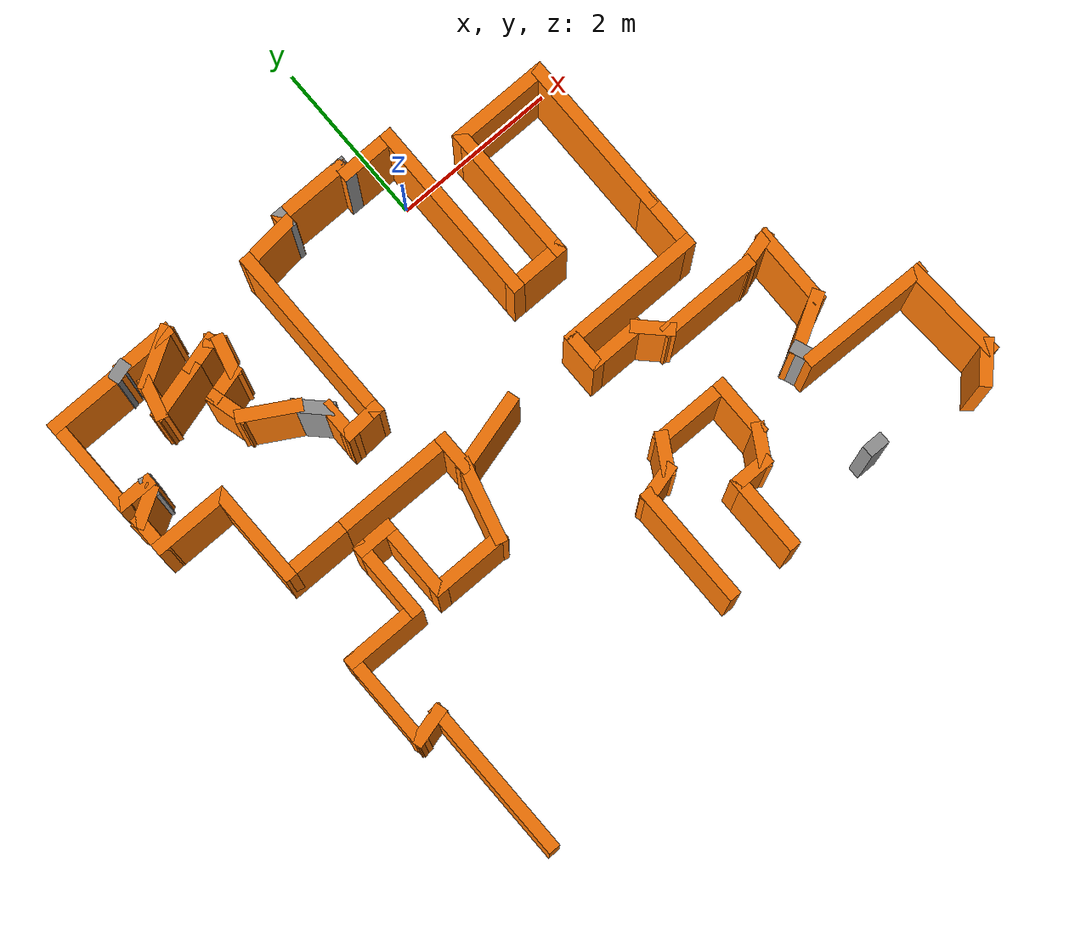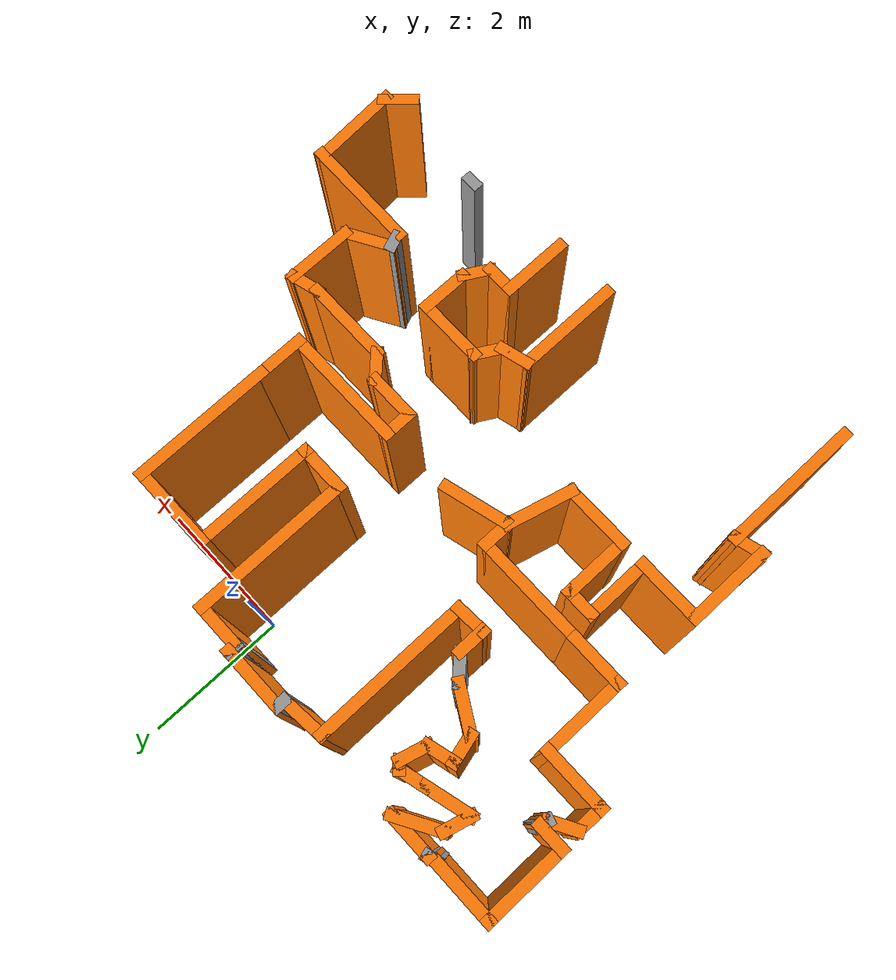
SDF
<sdf version="1.6">
 <model name="map_4">
  <pose>-0.448381 -5.69762 0 0 -0 0</pose>
  <link name="Wall_0">
   <collision name="Wall_0_Collision">
    <geometry><box><size>2.25 0.15 2.5</size></box></geometry>
    <pose>0 0 1.25 0 -0 0</pose>
   </collision>
   <visual name="Wall_0_Visual">
    <pose>0 0 1.25 0 -0 0</pose>
    <geometry><box><size>2.25 0.15 2.5</size></box></geometry>
    <material>
     <script><uri>file://media/materials/scripts/gazebo.material</uri><name>Gazebo/Grey</name></script>
     <ambient>0.996078 0.47451 0.0196078 1</ambient>
    </material>
    <meta><layer>0</layer></meta>
   </visual>
   <pose>-1.38482 5.02012 0 0 -0 -1.5708</pose>
  </link>
  <link name="Wall_1">
   <collision name="Wall_1_Collision">
    <geometry><box><size>0.523847 0.15 2.5</size></box></geometry>
    <pose>0 0 1.25 0 -0 0</pose>
   </collision>
   <visual name="Wall_1_Visual">
    <pose>0 0 1.25 0 -0 0</pose>
    <geometry><box><size>0.523847 0.15 2.5</size></box></geometry>
    <material>
     <script><uri>file://media/materials/scripts/gazebo.material</uri><name>Gazebo/Grey</name></script>
     <ambient>0.996078 0.47451 0.0196078 1</ambient>
    </material>
    <meta><layer>0</layer></meta>
   </visual>
   <pose>-1.57139 3.95855 0 0 -0 -3.07968</pose>
  </link>
  <link name="Wall_118">
   <collision name="Wall_118_Collision">
    <geometry><box><size>1.5 0.15 2.5</size></box></geometry>
    <pose>0 0 1.25 0 -0 0</pose>
   </collision>
   <visual name="Wall_118_Visual">
    <pose>0 0 1.25 0 -0 0</pose>
    <geometry><box><size>1.5 0.15 2.5</size></box></geometry>
    <material>
     <script><uri>file://media/materials/scripts/gazebo.material</uri><name>Gazebo/Grey</name></script>
     <ambient>0.996078 0.47451 0.0196078 1</ambient>
    </material>
    <meta><layer>0</layer></meta>
   </visual>
   <pose>0.254748 0.668578 0 0 -0 1.5708</pose>
  </link>
  <link name="Wall_119">
   <collision name="Wall_119_Collision">
    <geometry><box><size>0.5 0.15 2.5</size></box></geometry>
    <pose>0 0 1.25 0 -0 0</pose>
   </collision>
   <visual name="Wall_119_Visual">
    <pose>0 0 1.25 0 -0 0</pose>
    <geometry><box><size>0.5 0.15 2.5</size></box></geometry>
    <material>
     <script><uri>file://media/materials/scripts/gazebo.material</uri><name>Gazebo/Grey</name></script>
     <ambient>0.996078 0.47451 0.0196078 1</ambient>
    </material>
    <meta><layer>0</layer></meta>
   </visual>
   <pose>0.423785 1.38887 0 0 -0 0.261799</pose>
  </link>
  <link name="Wall_12">
   <collision name="Wall_12_Collision">
    <geometry><box><size>0.75 0.15 2.5</size></box></geometry>
    <pose>0 0 1.25 0 -0 0</pose>
   </collision>
   <visual name="Wall_12_Visual">
    <pose>0 0 1.25 0 -0 0</pose>
    <geometry><box><size>0.75 0.15 2.5</size></box></geometry>
    <material>
     <script><uri>file://media/materials/scripts/gazebo.material</uri><name>Gazebo/Grey</name></script>
     <ambient>0.996078 0.47451 0.0196078 1</ambient>
    </material>
    <meta><layer>0</layer></meta>
   </visual>
   <pose>-2.88554 5.51369 0 0 -0 -2.87979</pose>
  </link>
  <link name="Wall_120">
   <collision name="Wall_120_Collision">
    <geometry><box><size>0.5 0.15 2.5</size></box></geometry>
    <pose>0 0 1.25 0 -0 0</pose>
   </collision>
   <visual name="Wall_120_Visual">
    <pose>0 0 1.25 0 -0 0</pose>
    <geometry><box><size>0.5 0.15 2.5</size></box></geometry>
    <material>
     <script><uri>file://media/materials/scripts/gazebo.material</uri><name>Gazebo/Grey</name></script>
     <ambient>0.996078 0.47451 0.0196078 1</ambient>
    </material>
    <meta><layer>0</layer></meta>
   </visual>
   <pose>0.680322 1.58572 0 0 -0 1.0472</pose>
  </link>
  <link name="Wall_121">
   <collision name="Wall_121_Collision">
    <geometry><box><size>1 0.15 2.5</size></box></geometry>
    <pose>0 0 1.25 0 -0 0</pose>
   </collision>
   <visual name="Wall_121_Visual">
    <pose>0 0 1.25 0 -0 0</pose>
    <geometry><box><size>1 0.15 2.5</size></box></geometry>
    <material>
     <script><uri>file://media/materials/scripts/gazebo.material</uri><name>Gazebo/Grey</name></script>
     <ambient>0.996078 0.47451 0.0196078 1</ambient>
    </material>
    <meta><layer>0</layer></meta>
   </visual>
   <pose>1.19282 1.73727 0 0 -0 0</pose>
  </link>
  <link name="Wall_122">
   <collision name="Wall_122_Collision">
    <geometry><box><size>0.75 0.15 2.5</size></box></geometry>
    <pose>0 0 1.25 0 -0 0</pose>
   </collision>
   <visual name="Wall_122_Visual">
    <pose>0 0 1.25 0 -0 0</pose>
    <geometry><box><size>0.75 0.15 2.5</size></box></geometry>
    <material>
     <script><uri>file://media/materials/scripts/gazebo.material</uri><name>Gazebo/Grey</name></script>
     <ambient>0.996078 0.47451 0.0196078 1</ambient>
    </material>
    <meta><layer>0</layer></meta>
   </visual>
   <pose>1.61782 1.43727 0 0 -0 -1.5708</pose>
  </link>
  <link name="Wall_123">
   <collision name="Wall_123_Collision">
    <geometry><box><size>0.5 0.15 2.5</size></box></geometry>
    <pose>0 0 1.25 0 -0 0</pose>
   </collision>
   <visual name="Wall_123_Visual">
    <pose>0 0 1.25 0 -0 0</pose>
    <geometry><box><size>0.5 0.15 2.5</size></box></geometry>
    <material>
     <script><uri>file://media/materials/scripts/gazebo.material</uri><name>Gazebo/Grey</name></script>
     <ambient>0.996078 0.47451 0.0196078 1</ambient>
    </material>
    <meta><layer>0</layer></meta>
   </visual>
   <pose>1.53032 0.985719 0 0 -0 -2.0944</pose>
  </link>
  <link name="Wall_124">
   <collision name="Wall_124_Collision">
    <geometry><box><size>0.5 0.15 2.5</size></box></geometry>
    <pose>0 0 1.25 0 -0 0</pose>
   </collision>
   <visual name="Wall_124_Visual">
    <pose>0 0 1.25 0 -0 0</pose>
    <geometry><box><size>0.5 0.15 2.5</size></box></geometry>
    <material>
     <script><uri>file://media/materials/scripts/gazebo.material</uri><name>Gazebo/Grey</name></script>
     <ambient>0.996078 0.47451 0.0196078 1</ambient>
    </material>
    <meta><layer>0</layer></meta>
   </visual>
   <pose>1.26782 0.834164 0 0 -0 3.14159</pose>
  </link>
  <link name="Wall_125">
   <collision name="Wall_125_Collision">
    <geometry><box><size>1 0.15 2.5</size></box></geometry>
    <pose>0 0 1.25 0 -0 0</pose>
   </collision>
   <visual name="Wall_125_Visual">
    <pose>0 0 1.25 0 -0 0</pose>
    <geometry><box><size>1 0.15 2.5</size></box></geometry>
    <material>
     <script><uri>file://media/materials/scripts/gazebo.material</uri><name>Gazebo/Grey</name></script>
     <ambient>0.996078 0.47451 0.0196078 1</ambient>
    </material>
    <meta><layer>0</layer></meta>
   </visual>
   <pose>1.09282 0.409164 0 0 -0 -1.5708</pose>
  </link>
  <link name="Wall_13">
   <collision name="Wall_13_Collision">
    <geometry><box><size>0.5 0.15 2.5</size></box></geometry>
    <pose>0 0 1.25 0 -0 0</pose>
   </collision>
   <visual name="Wall_13_Visual">
    <pose>0 0 1.25 0 -0 0</pose>
    <geometry><box><size>0.5 0.15 2.5</size></box></geometry>
    <material>
     <script><uri>file://media/materials/scripts/gazebo.material</uri><name>Gazebo/Grey</name></script>
     <ambient>0.996078 0.47451 0.0196078 1</ambient>
    </material>
    <meta><layer>0</layer></meta>
   </visual>
   <pose>-3.13003 5.60508 0 0 -0 1.309</pose>
  </link>
  <link name="Wall_134">
   <collision name="Wall_134_Collision">
    <geometry><box><size>0.25 0.15 2.5</size></box></geometry>
    <pose>0 0 1.25 0 -0 0</pose>
   </collision>
   <visual name="Wall_134_Visual">
    <pose>0 0 1.25 0 -0 0</pose>
    <geometry><box><size>0.25 0.15 2.5</size></box></geometry>
    <material>
     <script><uri>file://media/materials/scripts/gazebo.material</uri><name>Gazebo/Grey</name></script>
     <ambient>1 1 1 1</ambient>
    </material>
    <meta><layer>0</layer></meta>
   </visual>
   <pose>2.46924 0.189335 0 0 -0 0</pose>
  </link>
  <link name="Wall_14">
   <collision name="Wall_14_Collision">
    <geometry><box><size>0.75 0.15 2.5</size></box></geometry>
    <pose>0 0 1.25 0 -0 0</pose>
   </collision>
   <visual name="Wall_14_Visual">
    <pose>0 0 1.25 0 -0 0</pose>
    <geometry><box><size>0.75 0.15 2.5</size></box></geometry>
    <material>
     <script><uri>file://media/materials/scripts/gazebo.material</uri><name>Gazebo/Grey</name></script>
     <ambient>0.996078 0.47451 0.0196078 1</ambient>
    </material>
    <meta><layer>0</layer></meta>
   </visual>
   <pose>-2.82493 5.92412 0 0 -0 0.523599</pose>
  </link>
  <link name="Wall_140">
   <collision name="Wall_140_Collision">
    <geometry><box><size>0.53772 0.15 2.5</size></box></geometry>
    <pose>0 0 1.25 0 -0 0</pose>
   </collision>
   <visual name="Wall_140_Visual">
    <pose>0 0 1.25 0 -0 0</pose>
    <geometry><box><size>0.53772 0.15 2.5</size></box></geometry>
    <material>
     <script><uri>file://media/materials/scripts/gazebo.material</uri><name>Gazebo/Grey</name></script>
     <ambient>0.996078 0.47451 0.0196078 1</ambient>
    </material>
    <meta><layer>0</layer></meta>
   </visual>
   <pose>3.95601 0.095884 0 0 -0 0.827595</pose>
  </link>
  <link name="Wall_141">
   <collision name="Wall_141_Collision">
    <geometry><box><size>1.27527 0.15 2.5</size></box></geometry>
    <pose>0 0 1.25 0 -0 0</pose>
   </collision>
   <visual name="Wall_141_Visual">
    <pose>0 0 1.25 0 -0 0</pose>
    <geometry><box><size>1.27527 0.15 2.5</size></box></geometry>
    <material>
     <script><uri>file://media/materials/scripts/gazebo.material</uri><name>Gazebo/Grey</name></script>
     <ambient>0.996078 0.47451 0.0196078 1</ambient>
    </material>
    <meta><layer>0</layer></meta>
   </visual>
   <pose>4.05249 0.753929 0 0 -0 1.6325</pose>
  </link>
  <link name="Wall_142">
   <collision name="Wall_142_Collision">
    <geometry><box><size>1.63453 0.15 2.5</size></box></geometry>
    <pose>0 0 1.25 0 -0 0</pose>
   </collision>
   <visual name="Wall_142_Visual">
    <pose>0 0 1.25 0 -0 0</pose>
    <geometry><box><size>1.63453 0.15 2.5</size></box></geometry>
    <material>
     <script><uri>file://media/materials/scripts/gazebo.material</uri><name>Gazebo/Grey</name></script>
     <ambient>0.996078 0.47451 0.0196078 1</ambient>
    </material>
    <meta><layer>0</layer></meta>
   </visual>
   <pose>3.29875 1.32706 0 0 -0 3.12601</pose>
  </link>
  <link name="Wall_143">
   <collision name="Wall_143_Collision">
    <geometry><box><size>0.29196 0.15 2.5</size></box></geometry>
    <pose>0 0 1.25 0 -0 0</pose>
   </collision>
   <visual name="Wall_143_Visual">
    <pose>0 0 1.25 0 -0 0</pose>
    <geometry><box><size>0.29196 0.15 2.5</size></box></geometry>
    <material>
     <script><uri>file://media/materials/scripts/gazebo.material</uri><name>Gazebo/Grey</name></script>
     <ambient>1 1 1 1</ambient>
    </material>
    <meta><layer>0</layer></meta>
   </visual>
   <pose>2.53157 1.45132 0 0 -0 1.93073</pose>
  </link>
  <link name="Wall_144">
   <collision name="Wall_144_Collision">
    <geometry><box><size>0.75 0.15 2.5</size></box></geometry>
    <pose>0 0 1.25 0 -0 0</pose>
   </collision>
   <visual name="Wall_144_Visual">
    <pose>0 0 1.25 0 -0 0</pose>
    <geometry><box><size>0.75 0.15 2.5</size></box></geometry>
    <material>
     <script><uri>file://media/materials/scripts/gazebo.material</uri><name>Gazebo/Grey</name></script>
     <ambient>0.996078 0.47451 0.0196078 1</ambient>
    </material>
    <meta><layer>0</layer></meta>
   </visual>
   <pose>2.76638 1.66775 0 0 -0 0.523599</pose>
  </link>
  <link name="Wall_146">
   <collision name="Wall_146_Collision">
    <geometry><box><size>1 0.15 2.5</size></box></geometry>
    <pose>0 0 1.25 0 -0 0</pose>
   </collision>
   <visual name="Wall_146_Visual">
    <pose>0 0 1.25 0 -0 0</pose>
    <geometry><box><size>1 0.15 2.5</size></box></geometry>
    <material>
     <script><uri>file://media/materials/scripts/gazebo.material</uri><name>Gazebo/Grey</name></script>
     <ambient>0.996078 0.47451 0.0196078 1</ambient>
    </material>
    <meta><layer>0</layer></meta>
   </visual>
   <pose>3.02619 2.24275 0 0 -0 1.5708</pose>
  </link>
  <link name="Wall_147">
   <collision name="Wall_147_Collision">
    <geometry><box><size>0.5 0.15 2.5</size></box></geometry>
    <pose>0 0 1.25 0 -0 0</pose>
   </collision>
   <visual name="Wall_147_Visual">
    <pose>0 0 1.25 0 -0 0</pose>
    <geometry><box><size>0.5 0.15 2.5</size></box></geometry>
    <material>
     <script><uri>file://media/materials/scripts/gazebo.material</uri><name>Gazebo/Grey</name></script>
     <ambient>0.996078 0.47451 0.0196078 1</ambient>
    </material>
    <meta><layer>0</layer></meta>
   </visual>
   <pose>2.85715 2.62246 0 0 -0 -2.87979</pose>
  </link>
  <link name="Wall_148">
   <collision name="Wall_148_Collision">
    <geometry><box><size>1.25 0.15 2.5</size></box></geometry>
    <pose>0 0 1.25 0 -0 0</pose>
   </collision>
   <visual name="Wall_148_Visual">
    <pose>0 0 1.25 0 -0 0</pose>
    <geometry><box><size>1.25 0.15 2.5</size></box></geometry>
    <material>
     <script><uri>file://media/materials/scripts/gazebo.material</uri><name>Gazebo/Grey</name></script>
     <ambient>0.996078 0.47451 0.0196078 1</ambient>
    </material>
    <meta><layer>0</layer></meta>
   </visual>
   <pose>2.13811 2.57716 0 0 -0 3.14159</pose>
  </link>
  <link name="Wall_149">
   <collision name="Wall_149_Collision">
    <geometry><box><size>0.5 0.15 2.5</size></box></geometry>
    <pose>0 0 1.25 0 -0 0</pose>
   </collision>
   <visual name="Wall_149_Visual">
    <pose>0 0 1.25 0 -0 0</pose>
    <geometry><box><size>0.5 0.15 2.5</size></box></geometry>
    <material>
     <script><uri>file://media/materials/scripts/gazebo.material</uri><name>Gazebo/Grey</name></script>
     <ambient>0.996078 0.47451 0.0196078 1</ambient>
    </material>
    <meta><layer>0</layer></meta>
   </visual>
   <pose>1.46437 2.70091 0 0 -0 2.35619</pose>
  </link>
  <link name="Wall_15">
   <collision name="Wall_15_Collision">
    <geometry><box><size>0.75 0.15 2.5</size></box></geometry>
    <pose>0 0 1.25 0 -0 0</pose>
   </collision>
   <visual name="Wall_15_Visual">
    <pose>0 0 1.25 0 -0 0</pose>
    <geometry><box><size>0.75 0.15 2.5</size></box></geometry>
    <material>
     <script><uri>file://media/materials/scripts/gazebo.material</uri><name>Gazebo/Grey</name></script>
     <ambient>0.996078 0.47451 0.0196078 1</ambient>
    </material>
    <meta><layer>0</layer></meta>
   </visual>
   <pose>-2.86512 6.07412 0 0 -0 3.14159</pose>
  </link>
  <link name="Wall_150">
   <collision name="Wall_150_Collision">
    <geometry><box><size>0.75 0.15 2.5</size></box></geometry>
    <pose>0 0 1.25 0 -0 0</pose>
   </collision>
   <visual name="Wall_150_Visual">
    <pose>0 0 1.25 0 -0 0</pose>
    <geometry><box><size>0.75 0.15 2.5</size></box></geometry>
    <material>
     <script><uri>file://media/materials/scripts/gazebo.material</uri><name>Gazebo/Grey</name></script>
     <ambient>0.996078 0.47451 0.0196078 1</ambient>
    </material>
    <meta><layer>0</layer></meta>
   </visual>
   <pose>1.04063 2.82465 0 0 -0 3.14159</pose>
  </link>
  <link name="Wall_151">
   <collision name="Wall_151_Collision">
    <geometry><box><size>0.5 0.15 2.5</size></box></geometry>
    <pose>0 0 1.25 0 -0 0</pose>
   </collision>
   <visual name="Wall_151_Visual">
    <pose>0 0 1.25 0 -0 0</pose>
    <geometry><box><size>0.5 0.15 2.5</size></box></geometry>
    <material>
     <script><uri>file://media/materials/scripts/gazebo.material</uri><name>Gazebo/Grey</name></script>
     <ambient>0.996078 0.47451 0.0196078 1</ambient>
    </material>
    <meta><layer>0</layer></meta>
   </visual>
   <pose>0.740628 2.99965 0 0 -0 1.5708</pose>
  </link>
  <link name="Wall_152">
   <collision name="Wall_152_Collision">
    <geometry><box><size>1.75 0.15 2.5</size></box></geometry>
    <pose>0 0 1.25 0 -0 0</pose>
   </collision>
   <visual name="Wall_152_Visual">
    <pose>0 0 1.25 0 -0 0</pose>
    <geometry><box><size>1.75 0.15 2.5</size></box></geometry>
    <material>
     <script><uri>file://media/materials/scripts/gazebo.material</uri><name>Gazebo/Grey</name></script>
     <ambient>0.996078 0.47451 0.0196078 1</ambient>
    </material>
    <meta><layer>0</layer></meta>
   </visual>
   <pose>1.54063 3.17465 0 0 -0 0</pose>
  </link>
  <link name="Wall_153">
   <collision name="Wall_153_Collision">
    <geometry><box><size>0.75 0.15 2.5</size></box></geometry>
    <pose>0 0 1.25 0 -0 0</pose>
   </collision>
   <visual name="Wall_153_Visual">
    <pose>0 0 1.25 0 -0 0</pose>
    <geometry><box><size>0.75 0.15 2.5</size></box></geometry>
    <material>
     <script><uri>file://media/materials/scripts/gazebo.material</uri><name>Gazebo/Grey</name></script>
     <ambient>0.996078 0.47451 0.0196078 1</ambient>
    </material>
    <meta><layer>0</layer></meta>
   </visual>
   <pose>2.34063 3.47465 0 0 -0 1.5708</pose>
  </link>
  <link name="Wall_154">
   <collision name="Wall_154_Collision">
    <geometry><box><size>2 0.15 2.5</size></box></geometry>
    <pose>0 0 1.25 0 -0 0</pose>
   </collision>
   <visual name="Wall_154_Visual">
    <pose>0 0 1.25 0 -0 0</pose>
    <geometry><box><size>2 0.15 2.5</size></box></geometry>
    <material>
     <script><uri>file://media/materials/scripts/gazebo.material</uri><name>Gazebo/Grey</name></script>
     <ambient>0.996078 0.47451 0.0196078 1</ambient>
    </material>
    <meta><layer>0</layer></meta>
   </visual>
   <pose>2.34063 4.69965 0 0 -0 1.5708</pose>
  </link>
  <link name="Wall_159">
   <collision name="Wall_159_Collision">
    <geometry><box><size>1.25 0.15 2.5</size></box></geometry>
    <pose>0 0 1.25 0 -0 0</pose>
   </collision>
   <visual name="Wall_159_Visual">
    <pose>0 0 1.25 0 -0 0</pose>
    <geometry><box><size>1.25 0.15 2.5</size></box></geometry>
    <material>
     <script><uri>file://media/materials/scripts/gazebo.material</uri><name>Gazebo/Grey</name></script>
     <ambient>0.996078 0.47451 0.0196078 1</ambient>
    </material>
    <meta><layer>0</layer></meta>
   </visual>
   <pose>1.79063 5.62465 0 0 -0 3.14159</pose>
  </link>
  <link name="Wall_16">
   <collision name="Wall_16_Collision">
    <geometry><box><size>0.25 0.15 2.5</size></box></geometry>
    <pose>0 0 1.25 0 -0 0</pose>
   </collision>
   <visual name="Wall_16_Visual">
    <pose>0 0 1.25 0 -0 0</pose>
    <geometry><box><size>0.25 0.15 2.5</size></box></geometry>
    <material>
     <script><uri>file://media/materials/scripts/gazebo.material</uri><name>Gazebo/Grey</name></script>
     <ambient>1 1 1 1</ambient>
    </material>
    <meta><layer>0</layer></meta>
   </visual>
   <pose>-3.21341 6.06118 0 0 -0 -2.87979</pose>
  </link>
  <link name="Wall_160">
   <collision name="Wall_160_Collision">
    <geometry><box><size>1.75 0.15 2.5</size></box></geometry>
    <pose>0 0 1.25 0 -0 0</pose>
   </collision>
   <visual name="Wall_160_Visual">
    <pose>0 0 1.25 0 -0 0</pose>
    <geometry><box><size>1.75 0.15 2.5</size></box></geometry>
    <material>
     <script><uri>file://media/materials/scripts/gazebo.material</uri><name>Gazebo/Grey</name></script>
     <ambient>0.996078 0.47451 0.0196078 1</ambient>
    </material>
    <meta><layer>0</layer></meta>
   </visual>
   <pose>1.24063 4.82465 0 0 -0 -1.5708</pose>
  </link>
  <link name="Wall_161">
   <collision name="Wall_161_Collision">
    <geometry><box><size>0.75 0.15 2.5</size></box></geometry>
    <pose>0 0 1.25 0 -0 0</pose>
   </collision>
   <visual name="Wall_161_Visual">
    <pose>0 0 1.25 0 -0 0</pose>
    <geometry><box><size>0.75 0.15 2.5</size></box></geometry>
    <material>
     <script><uri>file://media/materials/scripts/gazebo.material</uri><name>Gazebo/Grey</name></script>
     <ambient>0.996078 0.47451 0.0196078 1</ambient>
    </material>
    <meta><layer>0</layer></meta>
   </visual>
   <pose>0.940628 4.02465 0 0 -0 3.14159</pose>
  </link>
  <link name="Wall_162">
   <collision name="Wall_162_Collision">
    <geometry><box><size>2.25 0.15 2.5</size></box></geometry>
    <pose>0 0 1.25 0 -0 0</pose>
   </collision>
   <visual name="Wall_162_Visual">
    <pose>0 0 1.25 0 -0 0</pose>
    <geometry><box><size>2.25 0.15 2.5</size></box></geometry>
    <material>
     <script><uri>file://media/materials/scripts/gazebo.material</uri><name>Gazebo/Grey</name></script>
     <ambient>0.996078 0.47451 0.0196078 1</ambient>
    </material>
    <meta><layer>0</layer></meta>
   </visual>
   <pose>0.640628 5.07465 0 0 -0 1.5708</pose>
  </link>
  <link name="Wall_163">
   <collision name="Wall_163_Collision">
    <geometry><box><size>0.75 0.15 2.5</size></box></geometry>
    <pose>0 0 1.25 0 -0 0</pose>
   </collision>
   <visual name="Wall_163_Visual">
    <pose>0 0 1.25 0 -0 0</pose>
    <geometry><box><size>0.75 0.15 2.5</size></box></geometry>
    <material>
     <script><uri>file://media/materials/scripts/gazebo.material</uri><name>Gazebo/Grey</name></script>
     <ambient>0.996078 0.47451 0.0196078 1</ambient>
    </material>
    <meta><layer>0</layer></meta>
   </visual>
   <pose>0.340628 6.12465 0 0 -0 3.14159</pose>
  </link>
  <link name="Wall_164">
   <collision name="Wall_164_Collision">
    <geometry><box><size>0.25 0.15 2.5</size></box></geometry>
    <pose>0 0 1.25 0 -0 0</pose>
   </collision>
   <visual name="Wall_164_Visual">
    <pose>0 0 1.25 0 -0 0</pose>
    <geometry><box><size>0.25 0.15 2.5</size></box></geometry>
    <material>
     <script><uri>file://media/materials/scripts/gazebo.material</uri><name>Gazebo/Grey</name></script>
     <ambient>1 1 1 1</ambient>
    </material>
    <meta><layer>0</layer></meta>
   </visual>
   <pose>0.040628 6.17465 0 0 -0 1.5708</pose>
  </link>
  <link name="Wall_165">
   <collision name="Wall_165_Collision">
    <geometry><box><size>1 0.15 2.5</size></box></geometry>
    <pose>0 0 1.25 0 -0 0</pose>
   </collision>
   <visual name="Wall_165_Visual">
    <pose>0 0 1.25 0 -0 0</pose>
    <geometry><box><size>1 0.15 2.5</size></box></geometry>
    <material>
     <script><uri>file://media/materials/scripts/gazebo.material</uri><name>Gazebo/Grey</name></script>
     <ambient>0.996078 0.47451 0.0196078 1</ambient>
    </material>
    <meta><layer>0</layer></meta>
   </visual>
   <pose>-0.384372 6.22465 0 0 -0 3.14159</pose>
  </link>
  <link name="Wall_166">
   <collision name="Wall_166_Collision">
    <geometry><box><size>0.25 0.15 2.5</size></box></geometry>
    <pose>0 0 1.25 0 -0 0</pose>
   </collision>
   <visual name="Wall_166_Visual">
    <pose>0 0 1.25 0 -0 0</pose>
    <geometry><box><size>0.25 0.15 2.5</size></box></geometry>
    <material>
     <script><uri>file://media/materials/scripts/gazebo.material</uri><name>Gazebo/Grey</name></script>
     <ambient>1 1 1 1</ambient>
    </material>
    <meta><layer>0</layer></meta>
   </visual>
   <pose>-0.809372 6.17465 0 0 -0 -1.5708</pose>
  </link>
  <link name="Wall_167">
   <collision name="Wall_167_Collision">
    <geometry><box><size>0.728027 0.15 2.5</size></box></geometry>
    <pose>0 0 1.25 0 -0 0</pose>
   </collision>
   <visual name="Wall_167_Visual">
    <pose>0 0 1.25 0 -0 0</pose>
    <geometry><box><size>0.728027 0.15 2.5</size></box></geometry>
    <material>
     <script><uri>file://media/materials/scripts/gazebo.material</uri><name>Gazebo/Grey</name></script>
     <ambient>0.996078 0.47451 0.0196078 1</ambient>
    </material>
    <meta><layer>0</layer></meta>
   </visual>
   <pose>-1.0971 6.09739 0 0 -0 -3.04711</pose>
  </link>
  <link name="Wall_17">
   <collision name="Wall_17_Collision">
    <geometry><box><size>1 0.15 2.5</size></box></geometry>
    <pose>0 0 1.25 0 -0 0</pose>
   </collision>
   <visual name="Wall_17_Visual">
    <pose>0 0 1.25 0 -0 0</pose>
    <geometry><box><size>1 0.15 2.5</size></box></geometry>
    <material>
     <script><uri>file://media/materials/scripts/gazebo.material</uri><name>Gazebo/Grey</name></script>
     <ambient>0.996078 0.47451 0.0196078 1</ambient>
    </material>
    <meta><layer>0</layer></meta>
   </visual>
   <pose>-3.68671 6.04824 0 0 -0 3.14159</pose>
  </link>
  <link name="Wall_176">
   <collision name="Wall_176_Collision">
    <geometry><box><size>1 0.15 2.5</size></box></geometry>
    <pose>0 0 1.25 0 -0 0</pose>
   </collision>
   <visual name="Wall_176_Visual">
    <pose>0 0 1.25 0 -0 0</pose>
    <geometry><box><size>1 0.15 2.5</size></box></geometry>
    <material>
     <script><uri>file://media/materials/scripts/gazebo.material</uri><name>Gazebo/Grey</name></script>
     <ambient>0.996078 0.47451 0.0196078 1</ambient>
    </material>
    <meta><layer>0</layer></meta>
   </visual>
   <pose>-0.630183 2.98664 0 0 -0 0.261799</pose>
  </link>
  <link name="Wall_18">
   <collision name="Wall_18_Collision">
    <geometry><box><size>1.25 0.15 2.5</size></box></geometry>
    <pose>0 0 1.25 0 -0 0</pose>
   </collision>
   <visual name="Wall_18_Visual">
    <pose>0 0 1.25 0 -0 0</pose>
    <geometry><box><size>1.25 0.15 2.5</size></box></geometry>
    <material>
     <script><uri>file://media/materials/scripts/gazebo.material</uri><name>Gazebo/Grey</name></script>
     <ambient>0.996078 0.47451 0.0196078 1</ambient>
    </material>
    <meta><layer>0</layer></meta>
   </visual>
   <pose>-4.11171 5.49824 0 0 -0 -1.5708</pose>
  </link>
  <link name="Wall_19">
   <collision name="Wall_19_Collision">
    <geometry><box><size>0.5 0.15 2.5</size></box></geometry>
    <pose>0 0 1.25 0 -0 0</pose>
   </collision>
   <visual name="Wall_19_Visual">
    <pose>0 0 1.25 0 -0 0</pose>
    <geometry><box><size>0.5 0.15 2.5</size></box></geometry>
    <material>
     <script><uri>file://media/materials/scripts/gazebo.material</uri><name>Gazebo/Grey</name></script>
     <ambient>0.996078 0.47451 0.0196078 1</ambient>
    </material>
    <meta><layer>0</layer></meta>
   </visual>
   <pose>-3.93671 4.94824 0 0 -0 0</pose>
  </link>
  <link name="Wall_2">
   <collision name="Wall_2_Collision">
    <geometry><box><size>0.5 0.15 2.5</size></box></geometry>
    <pose>0 0 1.25 0 -0 0</pose>
   </collision>
   <visual name="Wall_2_Visual">
    <pose>0 0 1.25 0 -0 0</pose>
    <geometry><box><size>0.5 0.15 2.5</size></box></geometry>
    <material>
     <script><uri>file://media/materials/scripts/gazebo.material</uri><name>Gazebo/Grey</name></script>
     <ambient>0.996078 0.47451 0.0196078 1</ambient>
    </material>
    <meta><layer>0</layer></meta>
   </visual>
   <pose>-1.75795 4.12199 0 0 -0 1.5708</pose>
  </link>
  <link name="Wall_20">
   <collision name="Wall_20_Collision">
    <geometry><box><size>0.25 0.15 2.5</size></box></geometry>
    <pose>0 0 1.25 0 -0 0</pose>
   </collision>
   <visual name="Wall_20_Visual">
    <pose>0 0 1.25 0 -0 0</pose>
    <geometry><box><size>0.25 0.15 2.5</size></box></geometry>
    <material>
     <script><uri>file://media/materials/scripts/gazebo.material</uri><name>Gazebo/Grey</name></script>
     <ambient>1 1 1 1</ambient>
    </material>
    <meta><layer>0</layer></meta>
   </visual>
   <pose>-3.77465 4.89994 0 0 -0 -1.8326</pose>
  </link>
  <link name="Wall_21">
   <collision name="Wall_21_Collision">
    <geometry><box><size>0.5 0.15 2.5</size></box></geometry>
    <pose>0 0 1.25 0 -0 0</pose>
   </collision>
   <visual name="Wall_21_Visual">
    <pose>0 0 1.25 0 -0 0</pose>
    <geometry><box><size>0.5 0.15 2.5</size></box></geometry>
    <material>
     <script><uri>file://media/materials/scripts/gazebo.material</uri><name>Gazebo/Grey</name></script>
     <ambient>0.996078 0.47451 0.0196078 1</ambient>
    </material>
    <meta><layer>0</layer></meta>
   </visual>
   <pose>-3.93915 4.76414 0 0 -0 -2.61799</pose>
  </link>
  <link name="Wall_22">
   <collision name="Wall_22_Collision">
    <geometry><box><size>0.5 0.15 2.5</size></box></geometry>
    <pose>0 0 1.25 0 -0 0</pose>
   </collision>
   <visual name="Wall_22_Visual">
    <pose>0 0 1.25 0 -0 0</pose>
    <geometry><box><size>0.5 0.15 2.5</size></box></geometry>
    <material>
     <script><uri>file://media/materials/scripts/gazebo.material</uri><name>Gazebo/Grey</name></script>
     <ambient>0.996078 0.47451 0.0196078 1</ambient>
    </material>
    <meta><layer>0</layer></meta>
   </visual>
   <pose>-4.0907 4.50164 0 0 -0 -1.5708</pose>
  </link>
  <link name="Wall_25">
   <collision name="Wall_25_Collision">
    <geometry><box><size>1 0.15 2.5</size></box></geometry>
    <pose>0 0 1.25 0 -0 0</pose>
   </collision>
   <visual name="Wall_25_Visual">
    <pose>0 0 1.25 0 -0 0</pose>
    <geometry><box><size>1 0.15 2.5</size></box></geometry>
    <material>
     <script><uri>file://media/materials/scripts/gazebo.material</uri><name>Gazebo/Grey</name></script>
     <ambient>0.996078 0.47451 0.0196078 1</ambient>
    </material>
    <meta><layer>0</layer></meta>
   </visual>
   <pose>-3.6657 4.32664 0 0 -0 0</pose>
  </link>
  <link name="Wall_26">
   <collision name="Wall_26_Collision">
    <geometry><box><size>1.25 0.15 2.5</size></box></geometry>
    <pose>0 0 1.25 0 -0 0</pose>
   </collision>
   <visual name="Wall_26_Visual">
    <pose>0 0 1.25 0 -0 0</pose>
    <geometry><box><size>1.25 0.15 2.5</size></box></geometry>
    <material>
     <script><uri>file://media/materials/scripts/gazebo.material</uri><name>Gazebo/Grey</name></script>
     <ambient>0.996078 0.47451 0.0196078 1</ambient>
    </material>
    <meta><layer>0</layer></meta>
   </visual>
   <pose>-3.2407 3.77664 0 0 -0 -1.5708</pose>
  </link>
  <link name="Wall_3">
   <collision name="Wall_3_Collision">
    <geometry><box><size>0.5 0.15 2.5</size></box></geometry>
    <pose>0 0 1.25 0 -0 0</pose>
   </collision>
   <visual name="Wall_3_Visual">
    <pose>0 0 1.25 0 -0 0</pose>
    <geometry><box><size>0.5 0.15 2.5</size></box></geometry>
    <material>
     <script><uri>file://media/materials/scripts/gazebo.material</uri><name>Gazebo/Grey</name></script>
     <ambient>1 1 1 1</ambient>
    </material>
    <meta><layer>0</layer></meta>
   </visual>
   <pose>-1.88169 4.42073 0 0 -0 2.35619</pose>
  </link>
  <link name="Wall_30">
   <collision name="Wall_30_Collision">
    <geometry><box><size>1 0.15 2.5</size></box></geometry>
    <pose>0 0 1.25 0 -0 0</pose>
   </collision>
   <visual name="Wall_30_Visual">
    <pose>0 0 1.25 0 -0 0</pose>
    <geometry><box><size>1 0.15 2.5</size></box></geometry>
    <material>
     <script><uri>file://media/materials/scripts/gazebo.material</uri><name>Gazebo/Grey</name></script>
     <ambient>0.996078 0.47451 0.0196078 1</ambient>
    </material>
    <meta><layer>0</layer></meta>
   </visual>
   <pose>-2.8157 3.22664 0 0 -0 0</pose>
  </link>
  <link name="Wall_31">
   <collision name="Wall_31_Collision">
    <geometry><box><size>1.5 0.15 2.5</size></box></geometry>
    <pose>0 0 1.25 0 -0 0</pose>
   </collision>
   <visual name="Wall_31_Visual">
    <pose>0 0 1.25 0 -0 0</pose>
    <geometry><box><size>1.5 0.15 2.5</size></box></geometry>
    <material>
     <script><uri>file://media/materials/scripts/gazebo.material</uri><name>Gazebo/Grey</name></script>
     <ambient>0.996078 0.47451 0.0196078 1</ambient>
    </material>
    <meta><layer>0</layer></meta>
   </visual>
   <pose>-1.7157 3.22664 0 0 -0 0</pose>
  </link>
  <link name="Wall_32">
   <collision name="Wall_32_Collision">
    <geometry><box><size>0.5 0.15 2.5</size></box></geometry>
    <pose>0 0 1.25 0 -0 0</pose>
   </collision>
   <visual name="Wall_32_Visual">
    <pose>0 0 1.25 0 -0 0</pose>
    <geometry><box><size>0.5 0.15 2.5</size></box></geometry>
    <material>
     <script><uri>file://media/materials/scripts/gazebo.material</uri><name>Gazebo/Grey</name></script>
     <ambient>0.996078 0.47451 0.0196078 1</ambient>
    </material>
    <meta><layer>0</layer></meta>
   </visual>
   <pose>-1.0407 3.05164 0 0 -0 -1.5708</pose>
  </link>
  <link name="Wall_33">
   <collision name="Wall_33_Collision">
    <geometry><box><size>1 0.15 2.5</size></box></geometry>
    <pose>0 0 1.25 0 -0 0</pose>
   </collision>
   <visual name="Wall_33_Visual">
    <pose>0 0 1.25 0 -0 0</pose>
    <geometry><box><size>1 0.15 2.5</size></box></geometry>
    <material>
     <script><uri>file://media/materials/scripts/gazebo.material</uri><name>Gazebo/Grey</name></script>
     <ambient>0.996078 0.47451 0.0196078 1</ambient>
    </material>
    <meta><layer>0</layer></meta>
   </visual>
   <pose>-1.1507 2.46612 0 0 -0 -1.8326</pose>
  </link>
  <link name="Wall_34">
   <collision name="Wall_34_Collision">
    <geometry><box><size>1 0.15 2.5</size></box></geometry>
    <pose>0 0 1.25 0 -0 0</pose>
   </collision>
   <visual name="Wall_34_Visual">
    <pose>0 0 1.25 0 -0 0</pose>
    <geometry><box><size>1 0.15 2.5</size></box></geometry>
    <material>
     <script><uri>file://media/materials/scripts/gazebo.material</uri><name>Gazebo/Grey</name></script>
     <ambient>0.996078 0.47451 0.0196078 1</ambient>
    </material>
    <meta><layer>0</layer></meta>
   </visual>
   <pose>-1.6857 2.05561 0 0 -0 3.14159</pose>
  </link>
  <link name="Wall_35">
   <collision name="Wall_35_Collision">
    <geometry><box><size>1 0.15 2.5</size></box></geometry>
    <pose>0 0 1.25 0 -0 0</pose>
   </collision>
   <visual name="Wall_35_Visual">
    <pose>0 0 1.25 0 -0 0</pose>
    <geometry><box><size>1 0.15 2.5</size></box></geometry>
    <material>
     <script><uri>file://media/materials/scripts/gazebo.material</uri><name>Gazebo/Grey</name></script>
     <ambient>0.996078 0.47451 0.0196078 1</ambient>
    </material>
    <meta><layer>0</layer></meta>
   </visual>
   <pose>-2.1107 2.48061 0 0 -0 1.5708</pose>
  </link>
  <link name="Wall_36">
   <collision name="Wall_36_Collision">
    <geometry><box><size>0.5 0.15 2.5</size></box></geometry>
    <pose>0 0 1.25 0 -0 0</pose>
   </collision>
   <visual name="Wall_36_Visual">
    <pose>0 0 1.25 0 -0 0</pose>
    <geometry><box><size>0.5 0.15 2.5</size></box></geometry>
    <material>
     <script><uri>file://media/materials/scripts/gazebo.material</uri><name>Gazebo/Grey</name></script>
     <ambient>0.996078 0.47451 0.0196078 1</ambient>
    </material>
    <meta><layer>0</layer></meta>
   </visual>
   <pose>-2.2857 2.90561 0 0 -0 3.14159</pose>
  </link>
  <link name="Wall_37">
   <collision name="Wall_37_Collision">
    <geometry><box><size>1 0.15 2.5</size></box></geometry>
    <pose>0 0 1.25 0 -0 0</pose>
   </collision>
   <visual name="Wall_37_Visual">
    <pose>0 0 1.25 0 -0 0</pose>
    <geometry><box><size>1 0.15 2.5</size></box></geometry>
    <material>
     <script><uri>file://media/materials/scripts/gazebo.material</uri><name>Gazebo/Grey</name></script>
     <ambient>0.996078 0.47451 0.0196078 1</ambient>
    </material>
    <meta><layer>0</layer></meta>
   </visual>
   <pose>-2.4607 2.48061 0 0 -0 -1.5708</pose>
  </link>
  <link name="Wall_38">
   <collision name="Wall_38_Collision">
    <geometry><box><size>1 0.15 2.5</size></box></geometry>
    <pose>0 0 1.25 0 -0 0</pose>
   </collision>
   <visual name="Wall_38_Visual">
    <pose>0 0 1.25 0 -0 0</pose>
    <geometry><box><size>1 0.15 2.5</size></box></geometry>
    <material>
     <script><uri>file://media/materials/scripts/gazebo.material</uri><name>Gazebo/Grey</name></script>
     <ambient>0.996078 0.47451 0.0196078 1</ambient>
    </material>
    <meta><layer>0</layer></meta>
   </visual>
   <pose>-2.8857 2.05561 0 0 -0 3.14159</pose>
  </link>
  <link name="Wall_4">
   <collision name="Wall_4_Collision">
    <geometry><box><size>0.75 0.15 2.5</size></box></geometry>
    <pose>0 0 1.25 0 -0 0</pose>
   </collision>
   <visual name="Wall_4_Visual">
    <pose>0 0 1.25 0 -0 0</pose>
    <geometry><box><size>0.75 0.15 2.5</size></box></geometry>
    <material>
     <script><uri>file://media/materials/scripts/gazebo.material</uri><name>Gazebo/Grey</name></script>
     <ambient>0.996078 0.47451 0.0196078 1</ambient>
    </material>
    <meta><layer>0</layer></meta>
   </visual>
   <pose>-2.26525 4.69448 0 0 -0 2.61799</pose>
  </link>
  <link name="Wall_43">
   <collision name="Wall_43_Collision">
    <geometry><box><size>1.25 0.15 2.5</size></box></geometry>
    <pose>0 0 1.25 0 -0 0</pose>
   </collision>
   <visual name="Wall_43_Visual">
    <pose>0 0 1.25 0 -0 0</pose>
    <geometry><box><size>1.25 0.15 2.5</size></box></geometry>
    <material>
     <script><uri>file://media/materials/scripts/gazebo.material</uri><name>Gazebo/Grey</name></script>
     <ambient>0.996078 0.47451 0.0196078 1</ambient>
    </material>
    <meta><layer>0</layer></meta>
   </visual>
   <pose>-3.3107 1.50561 0 0 -0 -1.5708</pose>
  </link>
  <link name="Wall_44">
   <collision name="Wall_44_Collision">
    <geometry><box><size>0.5 0.15 2.5</size></box></geometry>
    <pose>0 0 1.25 0 -0 0</pose>
   </collision>
   <visual name="Wall_44_Visual">
    <pose>0 0 1.25 0 -0 0</pose>
    <geometry><box><size>0.5 0.15 2.5</size></box></geometry>
    <material>
     <script><uri>file://media/materials/scripts/gazebo.material</uri><name>Gazebo/Grey</name></script>
     <ambient>0.996078 0.47451 0.0196078 1</ambient>
    </material>
    <meta><layer>0</layer></meta>
   </visual>
   <pose>-3.14166 1.0009 0 0 -0 0.261799</pose>
  </link>
  <link name="Wall_46">
   <collision name="Wall_46_Collision">
    <geometry><box><size>2 0.15 2.5</size></box></geometry>
    <pose>0 0 1.25 0 -0 0</pose>
   </collision>
   <visual name="Wall_46_Visual">
    <pose>0 0 1.25 0 -0 0</pose>
    <geometry><box><size>2 0.15 2.5</size></box></geometry>
    <material>
     <script><uri>file://media/materials/scripts/gazebo.material</uri><name>Gazebo/Grey</name></script>
     <ambient>0.996078 0.47451 0.0196078 1</ambient>
    </material>
    <meta><layer>0</layer></meta>
   </visual>
   <pose>-2.97262 0.121192 0 0 -0 -1.5708</pose>
  </link>
  <link name="Wall_5">
   <collision name="Wall_5_Collision">
    <geometry><box><size>0.5 0.15 2.5</size></box></geometry>
    <pose>0 0 1.25 0 -0 0</pose>
   </collision>
   <visual name="Wall_5_Visual">
    <pose>0 0 1.25 0 -0 0</pose>
    <geometry><box><size>0.5 0.15 2.5</size></box></geometry>
    <material>
     <script><uri>file://media/materials/scripts/gazebo.material</uri><name>Gazebo/Grey</name></script>
     <ambient>0.996078 0.47451 0.0196078 1</ambient>
    </material>
    <meta><layer>0</layer></meta>
   </visual>
   <pose>-2.57035 5.01351 0 0 -0 1.8326</pose>
  </link>
  <link name="Wall_6">
   <collision name="Wall_6_Collision">
    <geometry><box><size>0.5 0.15 2.5</size></box></geometry>
    <pose>0 0 1.25 0 -0 0</pose>
   </collision>
   <visual name="Wall_6_Visual">
    <pose>0 0 1.25 0 -0 0</pose>
    <geometry><box><size>0.5 0.15 2.5</size></box></geometry>
    <material>
     <script><uri>file://media/materials/scripts/gazebo.material</uri><name>Gazebo/Grey</name></script>
     <ambient>0.996078 0.47451 0.0196078 1</ambient>
    </material>
    <meta><layer>0</layer></meta>
   </visual>
   <pose>-2.4466 5.22784 0 0 -0 0.261799</pose>
  </link>
  <link name="Wall_7">
   <collision name="Wall_7_Collision">
    <geometry><box><size>0.5 0.15 2.5</size></box></geometry>
    <pose>0 0 1.25 0 -0 0</pose>
   </collision>
   <visual name="Wall_7_Visual">
    <pose>0 0 1.25 0 -0 0</pose>
    <geometry><box><size>0.5 0.15 2.5</size></box></geometry>
    <material>
     <script><uri>file://media/materials/scripts/gazebo.material</uri><name>Gazebo/Grey</name></script>
     <ambient>0.996078 0.47451 0.0196078 1</ambient>
    </material>
    <meta><layer>0</layer></meta>
   </visual>
   <pose>-2.23227 5.44217 0 0 -0 1.309</pose>
  </link>
  <link name="Wall_8">
   <collision name="Wall_8_Collision">
    <geometry><box><size>0.25 0.15 2.5</size></box></geometry>
    <pose>0 0 1.25 0 -0 0</pose>
   </collision>
   <visual name="Wall_8_Visual">
    <pose>0 0 1.25 0 -0 0</pose>
    <geometry><box><size>0.25 0.15 2.5</size></box></geometry>
    <material>
     <script><uri>file://media/materials/scripts/gazebo.material</uri><name>Gazebo/Grey</name></script>
     <ambient>0.996078 0.47451 0.0196078 1</ambient>
    </material>
    <meta><layer>0</layer></meta>
   </visual>
   <pose>-2.22234 5.64657 0 0 -0 2.35619</pose>
  </link>
  <link name="Wall_9">
   <collision name="Wall_9_Collision">
    <geometry><box><size>0.5 0.15 2.5</size></box></geometry>
    <pose>0 0 1.25 0 -0 0</pose>
   </collision>
   <visual name="Wall_9_Visual">
    <pose>0 0 1.25 0 -0 0</pose>
    <geometry><box><size>0.5 0.15 2.5</size></box></geometry>
    <material>
     <script><uri>file://media/materials/scripts/gazebo.material</uri><name>Gazebo/Grey</name></script>
     <ambient>0.996078 0.47451 0.0196078 1</ambient>
    </material>
    <meta><layer>0</layer></meta>
   </visual>
   <pose>-2.42673 5.63663 0 0 -0 -2.87979</pose>
  </link>
  <static>1</static>
 </model>
</sdf>
